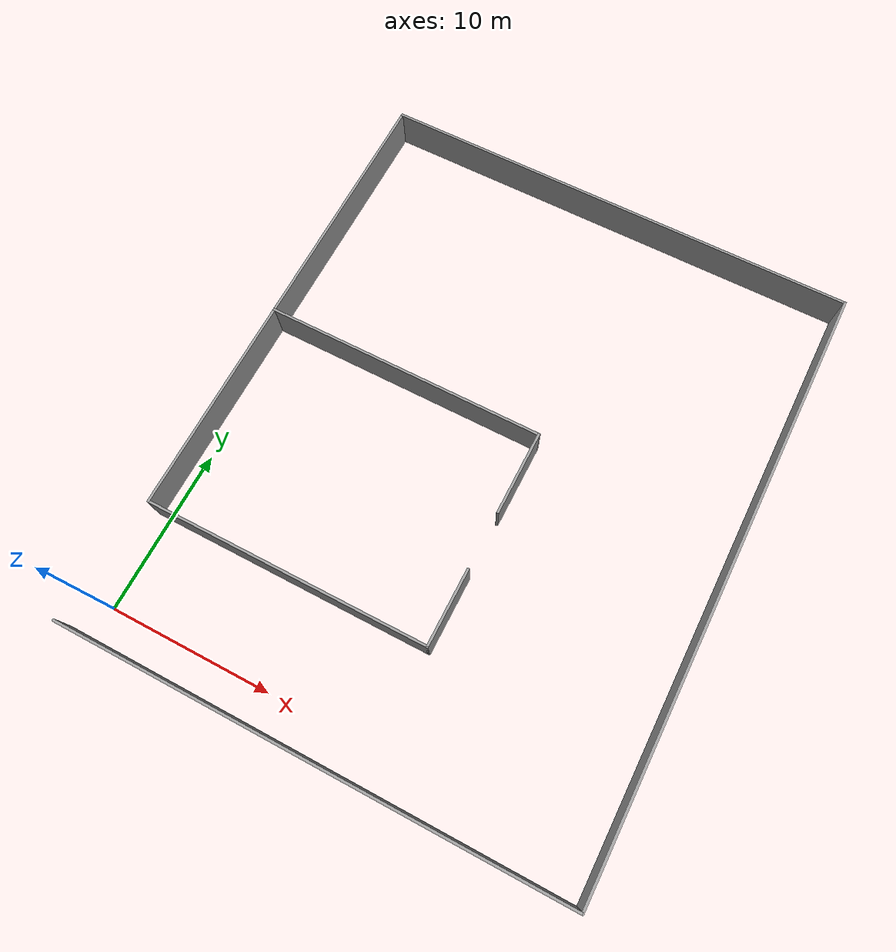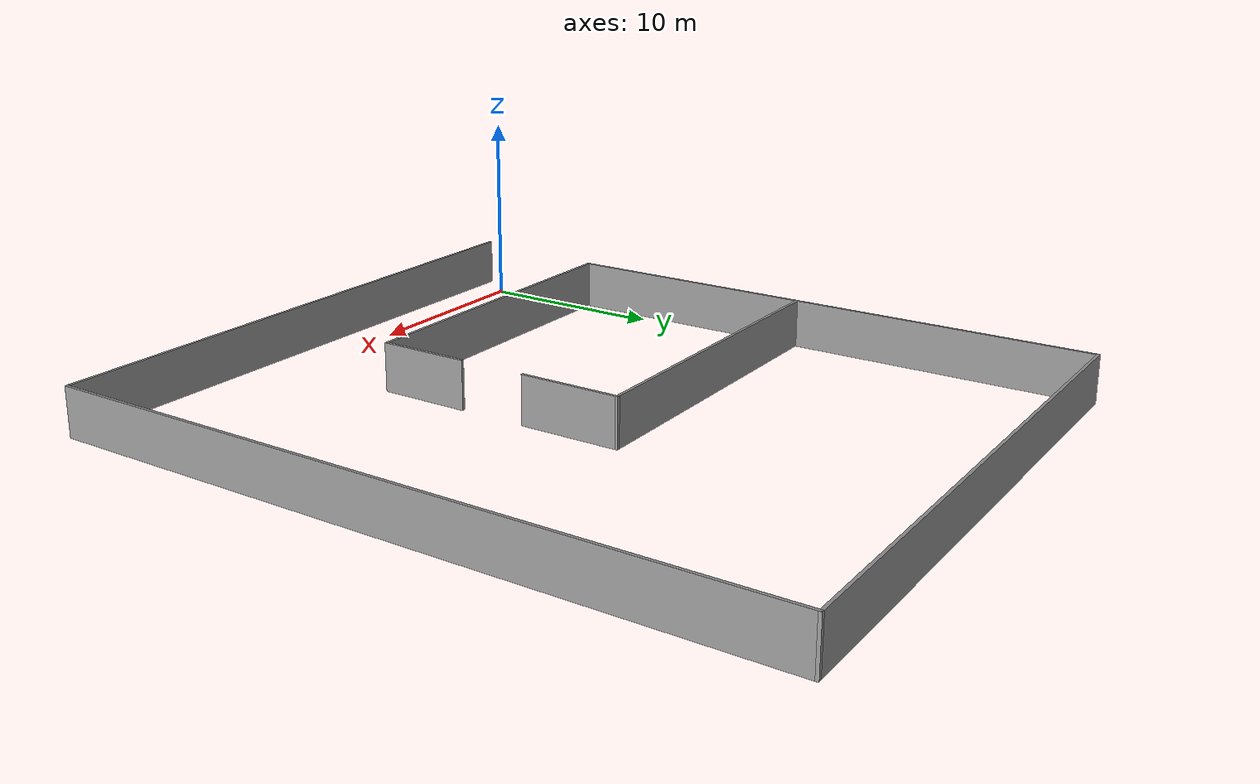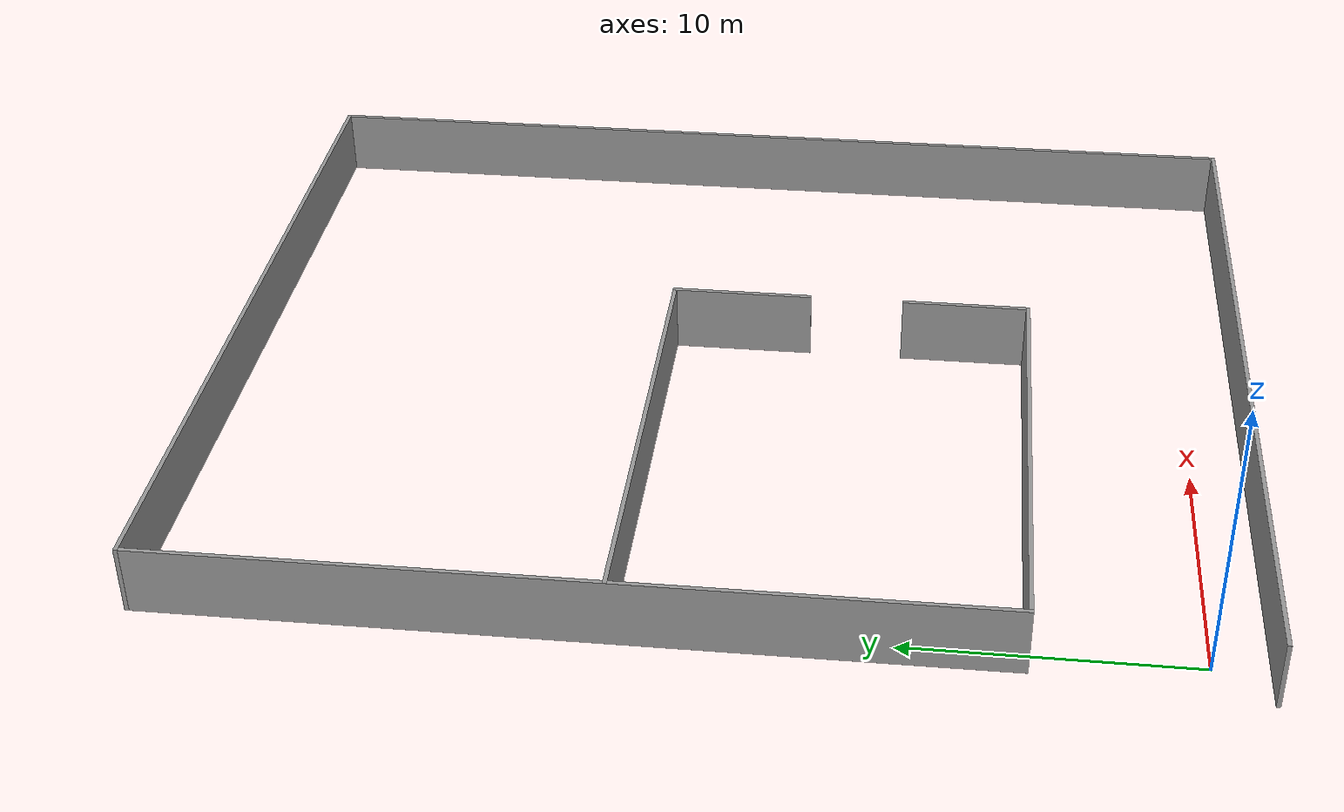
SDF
<?xml version='1.0'?>
<sdf version='1.6'>
  <model name='warehouse'>
    <pose frame=''>13.8762 16.4954 0 0 -0 0</pose>
    <link name='Wall_10'>
      <collision name='Wall_10_Collision'>
        <geometry>
          <box>
            <size>30 0.15 2.5</size>
          </box>
        </geometry>
        <pose frame=''>0 0 1.25 0 -0 0</pose>
      </collision>
      <visual name='Wall_10_Visual'>
        <pose frame=''>0 0 1.25 0 -0 0</pose>
        <geometry>
          <box>
            <size>30 0.15 2.5</size>
          </box>
        </geometry>
        <material>
          <script>
            <uri>file://media/materials/scripts/gazebo.material</uri>
            <name>Gazebo/Grey</name>
          </script>
          <ambient>1 1 1 1</ambient>
        </material>
        <meta>
          <layer>0</layer>
        </meta>
      </visual>
      <pose frame=''>0.374998 18.425 0 0 -0 3.14159</pose>
    </link>
    <link name='Wall_11'>
      <collision name='Wall_11_Collision'>
        <geometry>
          <box>
            <size>29.25 0.15 2.5</size>
          </box>
        </geometry>
        <pose frame=''>0 0 1.25 0 -0 0</pose>
      </collision>
      <visual name='Wall_11_Visual'>
        <pose frame=''>0 0 1.25 0 -0 0</pose>
        <geometry>
          <box>
            <size>29.25 0.15 2.5</size>
          </box>
        </geometry>
        <material>
          <script>
            <uri>file://media/materials/scripts/gazebo.material</uri>
            <name>Gazebo/Grey</name>
          </script>
          <ambient>1 1 1 1</ambient>
        </material>
        <meta>
          <layer>0</layer>
        </meta>
      </visual>
      <pose frame=''>-14.55 3.875 0 0 -0 -1.5708</pose>
    </link>
    <link name='Wall_12'>
      <collision name='Wall_12_Collision'>
        <geometry>
          <box>
            <size>17.5 0.15 2.5</size>
          </box>
        </geometry>
        <pose frame=''>0 0 1.25 0 -0 0</pose>
      </collision>
      <visual name='Wall_12_Visual'>
        <pose frame=''>0 0 1.25 0 -0 0</pose>
        <geometry>
          <box>
            <size>17.5 0.15 2.5</size>
          </box>
        </geometry>
        <material>
          <script>
            <uri>file://media/materials/scripts/gazebo.material</uri>
            <name>Gazebo/Grey</name>
          </script>
          <ambient>1 1 1 1</ambient>
        </material>
        <meta>
          <layer>0</layer>
        </meta>
      </visual>
      <pose frame=''>-5.875 -10.675 0 0 -0 0</pose>
    </link>
    <link name='Wall_13'>
      <collision name='Wall_13_Collision'>
        <geometry>
          <box>
            <size>4.75 0.15 2.5</size>
          </box>
        </geometry>
        <pose frame=''>0 0 1.25 0 -0 0</pose>
      </collision>
      <visual name='Wall_13_Visual'>
        <pose frame=''>0 0 1.25 0 -0 0</pose>
        <geometry>
          <box>
            <size>4.75 0.15 2.5</size>
          </box>
        </geometry>
        <material>
          <script>
            <uri>file://media/materials/scripts/gazebo.material</uri>
            <name>Gazebo/Grey</name>
          </script>
          <ambient>1 1 1 1</ambient>
        </material>
        <meta>
          <layer>0</layer>
        </meta>
      </visual>
      <pose frame=''>2.8 -8.375 0 0 -0 1.5708</pose>
    </link>
    <link name='Wall_21'>
      <collision name='Wall_21_Collision'>
        <geometry>
          <box>
            <size>5.25 0.15 2.5</size>
          </box>
        </geometry>
        <pose frame=''>0 0 1.25 0 -0 0</pose>
      </collision>
      <visual name='Wall_21_Visual'>
        <pose frame=''>0 0 1.25 0 -0 0</pose>
        <geometry>
          <box>
            <size>5.25 0.15 2.5</size>
          </box>
        </geometry>
        <material>
          <script>
            <uri>file://media/materials/scripts/gazebo.material</uri>
            <name>Gazebo/Grey</name>
          </script>
          <ambient>1 1 1 1</ambient>
        </material>
        <meta>
          <layer>0</layer>
        </meta>
      </visual>
      <pose frame=''>2.8 0.075 0 0 -0 1.5708</pose>
    </link>
    <link name='Wall_22'>
      <collision name='Wall_22_Collision'>
        <geometry>
          <box>
            <size>17.5 0.15 2.5</size>
          </box>
        </geometry>
        <pose frame=''>0 0 1.25 0 -0 0</pose>
      </collision>
      <visual name='Wall_22_Visual'>
        <pose frame=''>0 0 1.25 0 -0 0</pose>
        <geometry>
          <box>
            <size>17.5 0.15 2.5</size>
          </box>
        </geometry>
        <material>
          <script>
            <uri>file://media/materials/scripts/gazebo.material</uri>
            <name>Gazebo/Grey</name>
          </script>
          <ambient>1 1 1 1</ambient>
        </material>
        <meta>
          <layer>0</layer>
        </meta>
      </visual>
      <pose frame=''>-5.875 2.625 0 0 -0 3.14159</pose>
    </link>
    <link name='Wall_8'>
      <collision name='Wall_8_Collision'>
        <geometry>
          <box>
            <size>30.75 0.15 2.5</size>
          </box>
        </geometry>
        <pose frame=''>0 0 1.25 0 -0 0</pose>
      </collision>
      <visual name='Wall_8_Visual'>
        <pose frame=''>0 0 1.25 0 -0 0</pose>
        <geometry>
          <box>
            <size>30.75 0.15 2.5</size>
          </box>
        </geometry>
        <material>
          <script>
            <uri>file://media/materials/scripts/gazebo.material</uri>
            <name>Gazebo/Grey</name>
          </script>
          <ambient>1 1 1 1</ambient>
        </material>
        <meta>
          <layer>0</layer>
        </meta>
      </visual>
      <pose frame=''>-2e-06 -18.425 0 0 -0 0</pose>
    </link>
    <link name='Wall_9'>
      <collision name='Wall_9_Collision'>
        <geometry>
          <box>
            <size>37 0.15 2.5</size>
          </box>
        </geometry>
        <pose frame=''>0 0 1.25 0 -0 0</pose>
      </collision>
      <visual name='Wall_9_Visual'>
        <pose frame=''>0 0 1.25 0 -0 0</pose>
        <geometry>
          <box>
            <size>37 0.15 2.5</size>
          </box>
        </geometry>
        <material>
          <script>
            <uri>file://media/materials/scripts/gazebo.material</uri>
            <name>Gazebo/Grey</name>
          </script>
          <ambient>1 1 1 1</ambient>
        </material>
        <meta>
          <layer>0</layer>
        </meta>
      </visual>
      <pose frame=''>15.3 -1e-06 0 0 -0 1.5708</pose>
    </link>
    <static>1</static>
  </model>
</sdf>
